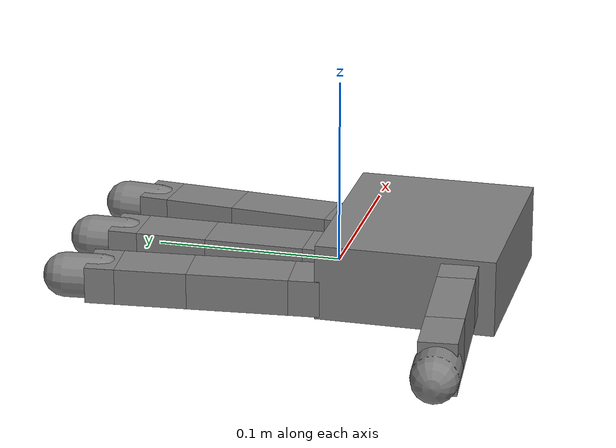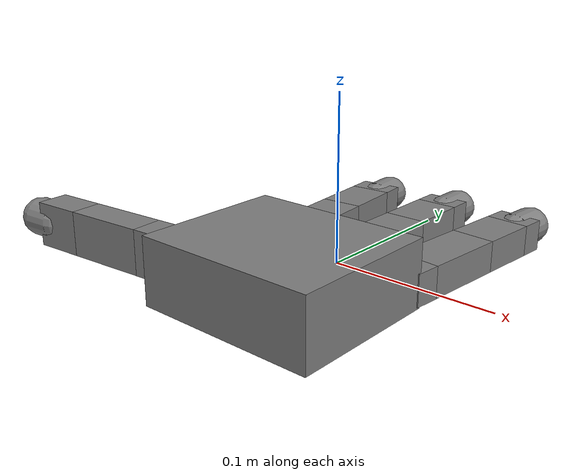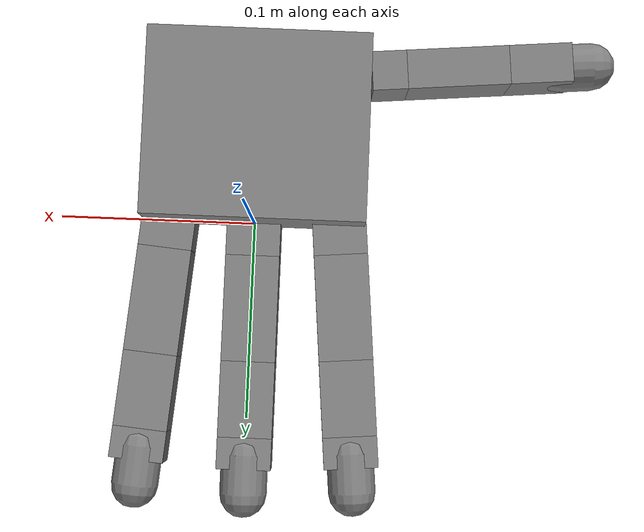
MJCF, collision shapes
<mujoco model="allegro_right">
  <compiler angle="radian" meshdir="assets" autolimits="true"/>

  <option cone="elliptic" impratio="10"/>

  <default>
    <default class="allegro_right">
      <joint axis="0 1 0" damping=".1"/>
      <position kp="1"/>
      <geom density="800"/>

      <default class="visual">
        <geom type="mesh" contype="0" conaffinity="0" group="2" material="black"/>
        <default class="palm_visual">
          <geom mesh="base_link"/>
        </default>
        <default class="base_visual">
          <geom mesh="link_0.0"/>
        </default>
        <default class="proximal_visual">
          <geom mesh="link_1.0"/>
        </default>
        <default class="medial_visual">
          <geom mesh="link_2.0"/>
        </default>
        <default class="distal_visual">
          <geom mesh="link_3.0"/>
        </default>
        <default class="fingertip_visual">
          <geom pos="0 0 0.0267" material="white" mesh="link_3.0_tip"/>
        </default>
        <default class="thumbtip_visual">
          <geom pos="0 0 0.0423" material="white" mesh="link_15.0_tip"/>
        </default>
      </default>

      <default class="collision">
        <geom group="3" type="box" mass="0"/>
        <default class="palm_collision">
          <geom size="0.0204 0.0565 0.0475" pos="-0.0093 0 -0.0475"/>
        </default>
        <default class="base_collision">
          <geom size="0.0098 0.01375 0.0082" pos="0 0 0.0082"/>
          <default class="thumb_base_collision">
            <geom size="0.0179 0.017 0.02275" pos="-0.0179 0.009 0.0145"/>
          </default>
        </default>
        <default class="proximal_collision">
          <geom size="0.0098 0.01375 0.027" pos="0 0 0.027"/>
          <default class="thumb_proximal_collision">
            <geom size="0.0098 0.01375 0.00885" pos="0 0 0.00885"/>
          </default>
        </default>
        <default class="medial_collision">
          <geom size="0.0098 0.01375 0.0192" pos="0 0 0.0192"/>
          <default class="thumb_medial_collision">
            <geom size="0.0098 0.01375 0.0257" pos="0 0 0.0257"/>
          </default>
        </default>
        <default class="distal_collision">
          <geom size="0.0098 0.01375 0.008" pos="0 0 0.008"/>
          <default class="thumb_distal_collision">
            <geom size="0.0098 0.01375 0.0157" pos="0 0 0.0157"/>
          </default>
        </default>
        <default class="fingertip_collision">
          <geom type="capsule" size="0.012 0.01" pos="0 0 0.019"/>
          <default class="thumbtip_collision">
            <geom type="capsule" size="0.012 0.008" pos="0 0 0.035"/>
          </default>
        </default>
      </default>

      <default class="base">
        <joint axis="0 0 1" range="-0.47 0.47"/>
        <position ctrlrange="-0.47 0.47"/>
      </default>
      <default class="proximal">
        <joint range="-0.196 1.61"/>
        <position ctrlrange="-0.196 1.61"/>
      </default>
      <default class="medial">
        <joint range="-0.174 1.709"/>
        <position ctrlrange="-0.174 1.709"/>
      </default>
      <default class="distal">
        <joint range="-0.227 1.618"/>
        <position ctrlrange="-0.227 1.618"/>
      </default>
      <default class="thumb_base">
        <joint axis="-1 0 0" range="0.263 1.396"/>
        <position ctrlrange="0.263 1.396"/>
      </default>
      <default class="thumb_proximal">
        <joint axis="0 0 1" range="-0.105 1.163"/>
        <position ctrlrange="-0.105 1.163"/>
      </default>
      <default class="thumb_medial">
        <joint range="-0.189 1.644"/>
        <position ctrlrange="-0.189 1.644"/>
      </default>
      <default class="thumb_distal">
        <joint range="-0.162 1.719"/>
        <position ctrlrange="-0.162 1.719"/>
      </default>
    </default>
  </default>

  <asset>
    <material name="black" rgba="0.2 0.2 0.2 1"/>
    <material name="white" rgba="0.9 0.9 0.9 1"/>

    <mesh file="base_link.stl"/>
    <mesh file="link_0.0.stl"/>
    <mesh file="link_1.0.stl"/>
    <mesh file="link_2.0.stl"/>
    <mesh file="link_3.0.stl"/>
    <mesh file="link_3.0_tip.stl"/>
    <mesh file="link_12.0_right.stl"/>
    <mesh file="link_13.0.stl"/>
    <mesh file="link_14.0.stl"/>
    <mesh file="link_15.0.stl"/>
    <mesh file="link_15.0_tip.stl"/>
  </asset>

  <worldbody>
      <body name="rh_palm" quat="-0.5 0.5 -0.5 -0.5" childclass="allegro_right">
      <!-- add dof for wrist -->
      <joint name="rh_wrist_ty" type="slide" pos="0 0 -0.1" axis="0 0 1" range="0. 0.06" damping="24"/>
      <joint name="rh_wrist_tx" type="slide" pos="0 0 -0.1" axis="0 -1 0" range="-1. 1." damping="24"/>
      <joint name="rh_wrist_yaw" type="hinge" axis="1 0 0" pos="0 0 -0.1" range="-0.174533 0.523599" damping="24"/>
      <joint name="rh_wrist_pitch" type="hinge" axis="0 1 0" pos="0 0 -0.1" range="-0.174533 0.174533" damping="24"/>
        <geom class="palm_visual" mesh="base_link"/>
        <geom class="palm_collision"/>
        <!-- First finger -->
        <body name="rh_ff_base" pos="0 0.0435 -0.001542" quat="0.999048 -0.0436194 0 0">
          <joint name="rh_ffj0" class="base"/>
          <geom class="base_visual"/>
          <geom class="base_collision"/>
          <body name="rh_ff_proximal" pos="0 0 0.0164">
            <joint name="rh_ffj1" class="proximal"/>
            <geom class="proximal_visual"/>
            <geom class="proximal_collision"/>
            <body name="rh_ff_medial" pos="0 0 0.054">
              <joint name="rh_ffj2" class="medial"/>
              <geom class="medial_visual"/>
              <geom class="medial_collision"/>
              <body name="rh_ff_distal" pos="0 0 0.0384">
                <joint name="rh_ffj3" class="distal"/>
                <geom class="distal_visual"/>
                <geom class="distal_collision"/>
                <body name="rh_ff_tip">
                  <geom class="fingertip_visual"/>
                  <geom class="fingertip_collision"/>
                </body>
              </body>
            </body>
          </body>
        </body>
        <!-- Middle finger -->
        <body name="rh_mf_base" pos="0 0 0.0007">
          <joint name="rh_mfj0" class="base"/>
          <geom class="base_visual"/>
          <geom class="base_collision"/>
          <body name="rh_mf_proximal" pos="0 0 0.0164">
            <joint name="rh_mfj1" class="proximal"/>
            <geom class="proximal_visual"/>
            <geom class="proximal_collision"/>
            <body name="rh_mf_medial" pos="0 0 0.054">
              <joint name="rh_mfj2" class="medial"/>
              <geom class="medial_visual"/>
              <geom class="medial_collision"/>
              <body name="rh_mf_distal" pos="0 0 0.0384">
                <joint name="rh_mfj3" class="distal"/>
                <geom class="distal_visual"/>
                <geom class="distal_collision"/>
                <body name="rh_mf_tip">
                  <geom class="fingertip_visual"/>
                  <geom class="fingertip_collision"/>
                </body>
              </body>
            </body>
          </body>
        </body>
        <!-- Ring finger -->
        <body name="rh_rf_base" pos="0 -0.0435 -0.001542" quat="0.999048 0.0436194 0 0">
          <joint name="rh_rfj0" class="base"/>
          <geom class="base_visual"/>
          <geom class="base_collision"/>
          <body name="rh_rf_proximal" pos="0 0 0.0164">
            <joint name="rh_rfj1" class="proximal"/>
            <geom class="proximal_visual"/>
            <geom class="proximal_collision"/>
            <body name="rh_rf_medial" pos="0 0 0.054">
              <joint name="rh_rfj2" class="medial"/>
              <geom class="medial_visual"/>
              <geom class="medial_collision"/>
              <body name="rh_rf_distal" pos="0 0 0.0384">
                <joint name="rh_rfj3" class="distal"/>
                <geom class="distal_visual"/>
                <geom class="distal_collision"/>
                <body name="rh_rf_tip">
                  <geom class="fingertip_visual"/>
                  <geom class="fingertip_collision"/>
                </body>
              </body>
            </body>
          </body>
        </body>
        <!-- Thumb -->
        <body name="rh_th_base" pos="-0.0182 0.019333 -0.045987" quat="0.477714 -0.521334 -0.521334 -0.477714">
          <joint name="rh_thj0" class="thumb_base"/>
          <geom class="visual" mesh="link_12.0_right"/>
          <geom class="thumb_base_collision"/>
          <body name="rh_th_proximal" pos="-0.027 0.005 0.0399">
            <joint name="rh_thj1" class="thumb_proximal"/>
            <geom class="visual" mesh="link_13.0"/>
            <geom class="thumb_proximal_collision"/>
            <body name="rh_th_medial" pos="0 0 0.0177">
              <joint name="rh_thj2" class="thumb_medial"/>
              <geom class="visual" mesh="link_14.0"/>
              <geom class="thumb_medial_collision"/>
              <body name="rh_th_distal" pos="0 0 0.0514">
                <joint name="rh_thj3" class="thumb_distal"/>
                <geom class="visual" mesh="link_15.0"/>
                <geom class="thumb_distal_collision"/>
                <body name="rh_th_tip">
                  <geom class="thumbtip_visual"/>
                  <geom class="thumbtip_collision"/>
                </body>
              </body>
            </body>
          </body>
        </body>
      </body>
  </worldbody>

  <contact>
    <exclude body1="rh_palm" body2="rh_ff_base"/>
    <exclude body1="rh_palm" body2="rh_mf_base"/>
    <exclude body1="rh_palm" body2="rh_rf_base"/>
    <exclude body1="rh_palm" body2="rh_th_base"/>
    <exclude body1="rh_palm" body2="rh_th_proximal"/>
  </contact>

  <actuator>
    <position name="rh_ffa0" joint="rh_ffj0" class="base"/>
    <position name="rh_ffa1" joint="rh_ffj1" class="proximal"/>
    <position name="rh_ffa2" joint="rh_ffj2" class="medial"/>
    <position name="rh_ffa3" joint="rh_ffj3" class="distal"/>
    <position name="rh_mfa0" joint="rh_mfj0" class="base"/>
    <position name="rh_mfa1" joint="rh_mfj1" class="proximal"/>
    <position name="rh_mfa2" joint="rh_mfj2" class="medial"/>
    <position name="rh_mfa3" joint="rh_mfj3" class="distal"/>
    <position name="rh_rfa0" joint="rh_rfj0" class="base"/>
    <position name="rh_rfa1" joint="rh_rfj1" class="proximal"/>
    <position name="rh_rfa2" joint="rh_rfj2" class="medial"/>
    <position name="rh_rfa3" joint="rh_rfj3" class="distal"/>
    <position name="rh_tha0" joint="rh_thj0" class="thumb_base"/>
    <position name="rh_tha1" joint="rh_thj1" class="thumb_proximal"/>
    <position name="rh_tha2" joint="rh_thj2" class="thumb_medial"/>
    <position name="rh_tha3" joint="rh_thj3" class="thumb_distal"/>
    <position name="rh_wrist_pitch" joint="rh_wrist_pitch" kp="300" ctrlrange="-0.174533 0.174533"/>
    <position name="rh_wrist_yaw" joint="rh_wrist_yaw" kp="300" ctrlrange="-0.174533 0.523599"/>
    <position name="rh_wrist_ty" joint="rh_wrist_ty" kp="300" ctrlrange="0. 0.06"/>
    <position name="rh_wrist_tx" joint="rh_wrist_tx" kp="300" ctrlrange="-1. 1."/>
  </actuator>
</mujoco>
